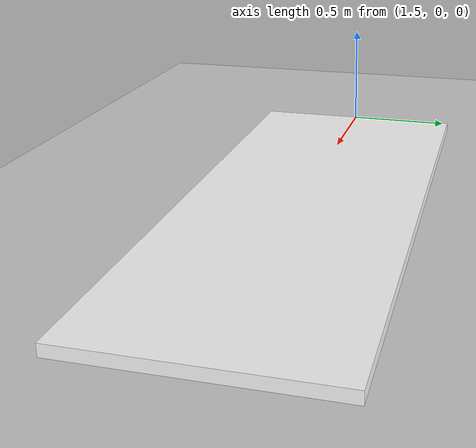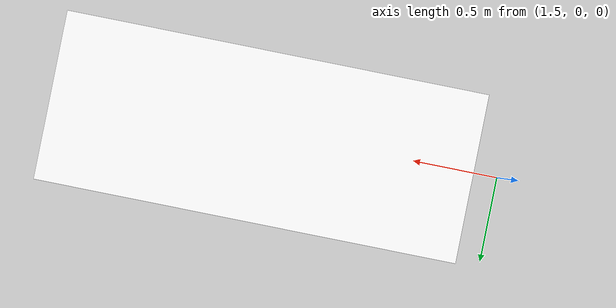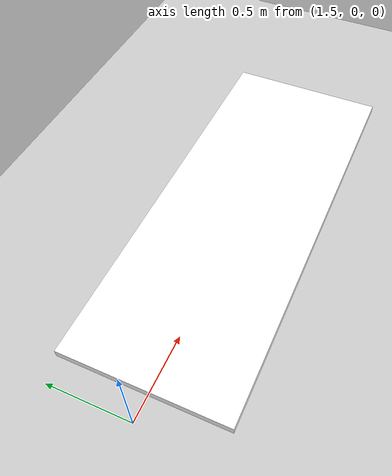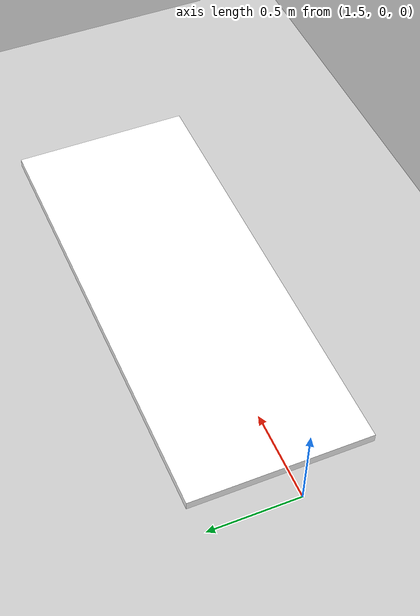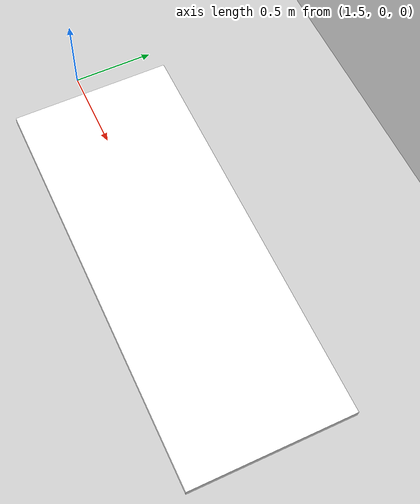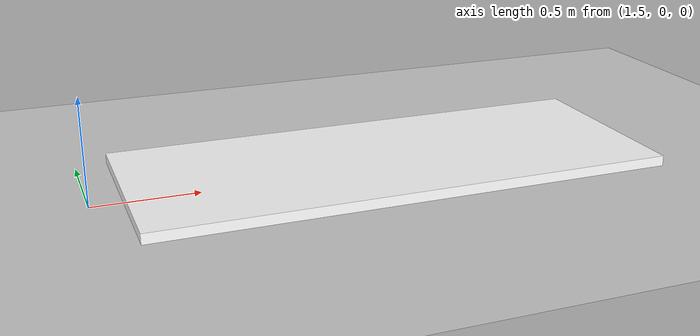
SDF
<?xml version="1.0" ?>
<sdf version="1.4">
  <!-- We use a custom world for the rrbot so that the camera angle is launched correctly -->

  <world name="default">

  <plugin name="xbot2_clock" filename="libxbot2_gz_clock.so"/>

  <gravity>0 0 -9.81</gravity>

  <model name="ground_plane">
    <static>true</static>
    <link name="link">
      <collision name="collision">
        <geometry>
          <plane>
            <normal>0 0 1</normal>
            <size>100 100</size>
          </plane>
        </geometry>
        <surface>
          <friction>
            <ode>
              <mu>1</mu>
              <mu2>1</mu2>
            </ode>
          </friction>
        </surface>
      </collision>
      <visual name="visual">
        <cast_shadows>false</cast_shadows>
        <geometry>
          <plane>
            <normal>0 0 1</normal>
            <size>100 100</size>
          </plane>
        </geometry>
        <material>
          <script>
            <uri>file://media/materials/scripts/gazebo.material</uri>
            <name>Gazebo/Grey</name>
          </script>
        </material>
      </visual>
    </link>
  </model>

    <model name='board_0.05m_2.5L'>
      <link name='link'>
        <inertial>
          <mass>1</mass>
          <inertia>
            <ixx>0.083</ixx>
            <ixy>0</ixy>
            <ixz>0</ixz>
            <iyy>0.083</iyy>
            <iyz>0</iyz>
            <izz>0.083</izz>
          </inertia>
          <pose>0 0 0 0 -0 0</pose>
        </inertial>
        <self_collide>0</self_collide>
        <enable_wind>0</enable_wind>
        <kinematic>0</kinematic>
        <pose>0 0 0.025 0 -0 0</pose>
        <gravity>1</gravity>
        <visual name='visual'>
          <geometry>
            <box>
              <size>2.5 1 0.05</size>
            </box>
          </geometry>
          <material>
            <ambient>0.627 0.322 0.176 1</ambient>
            <shader type='pixel'>
              <normal_map>__default__</normal_map>
            </shader>
            <script>
              <name>ModelPreview_8::link::visual_MATERIAL_</name>
              <uri>__default__</uri>
            </script>
            <diffuse>1 1 1 1</diffuse>
            <specular>0 0 0 1</specular>
            <emissive>0 0 0 1</emissive>
          </material>
          <pose>0 0 0 0 -0 0</pose>
          <transparency>0</transparency>
          <cast_shadows>1</cast_shadows>
        </visual>
        <collision name='collision'>
          <laser_retro>0</laser_retro>
          <max_contacts>10</max_contacts>
          <pose>0 0 0 0 -0 0</pose>
          <geometry>
            <box>
              <size>2.5 1 0.05</size>
            </box>
          </geometry>
          <surface>
            <friction>
              <ode>
                <mu>1</mu>
                <mu2>1</mu2>
                <fdir1>0 0 0</fdir1>
                <slip1>0</slip1>
                <slip2>0</slip2>
              </ode>
              <torsional>
                <coefficient>1</coefficient>
                <patch_radius>0</patch_radius>
                <surface_radius>0</surface_radius>
                <use_patch_radius>1</use_patch_radius>
                <ode>
                  <slip>0</slip>
                </ode>
              </torsional>
            </friction>
            <bounce>
              <restitution_coefficient>0</restitution_coefficient>
              <threshold>1e+06</threshold>
            </bounce>
            <contact>
              <collide_without_contact>0</collide_without_contact>
              <collide_without_contact_bitmask>1</collide_without_contact_bitmask>
              <collide_bitmask>1</collide_bitmask>
              <ode>
                <soft_cfm>0</soft_cfm>
                <soft_erp>0.2</soft_erp>
                <kp>1e+13</kp>
                <kd>1</kd>
                <max_vel>0.01</max_vel>
                <min_depth>0</min_depth>
              </ode>
              <bullet>
                <split_impulse>1</split_impulse>
                <split_impulse_penetration_threshold>-0.01</split_impulse_penetration_threshold>
                <soft_cfm>0</soft_cfm>
                <soft_erp>0.2</soft_erp>
                <kp>1e+13</kp>
                <kd>1</kd>
              </bullet>
            </contact>
          </surface>
        </collision>
      </link>
      <static>1</static>
      <allow_auto_disable>1</allow_auto_disable>
      <pose>2.89995 0.037 0 0 -0 0</pose>
    </model>

    <model name='board_0.05m_2.5L'>
      <pose>1.84238 0.096554 0 0 -0 0</pose>
      <scale>1 1 1</scale>
      <link name='link'>
        <pose>1.84238 0.096554 0.025 0 -0 0</pose>
        <velocity>0 0 0 0 -0 0</velocity>
        <acceleration>0 0 0 0 -0 0</acceleration>
        <wrench>0 0 0 0 -0 0</wrench>
      </link>
    </model>

    <!-- Global light source -->
    <include>
      <uri>model://sun</uri>
    </include>

    <!-- Focus camera on tall pendulum -->
    <gui fullscreen='0'>
      <camera name='user_camera'>
        <pose>4.927360 -4.376610 3.740080 0.000000 0.275643 2.356190</pose>
        <view_controller>orbit</view_controller>
      </camera>
    </gui>

    <physics name="update_rate" type="ode">
      <real_time_update_rate>4000</real_time_update_rate>
      <max_step_size>0.00025</max_step_size>
      <max_contacts>5</max_contacts>
      <bullet>
	<solver>
          <iters>100</iters>
          <sor>1.55</sor>
        </solver>
        <constraints>
          <contact_surface_layer>0.2</contact_surface_layer>
          <cfm>0.005</cfm>
          <erp>0.2</erp>
        </constraints>
      </bullet>
      <ode>
	<solver>
          <iters>50</iters>
          <sor>1.20</sor>
        </solver>
        <constraints>
          <contact_surface_layer>0.0002</contact_surface_layer>
          <contact_max_correcting_vel>500</contact_max_correcting_vel>
          <cfm>0.000001</cfm>
          <erp>0.3</erp>
        </constraints>
      </ode>
    </physics>

  </world>
</sdf>
